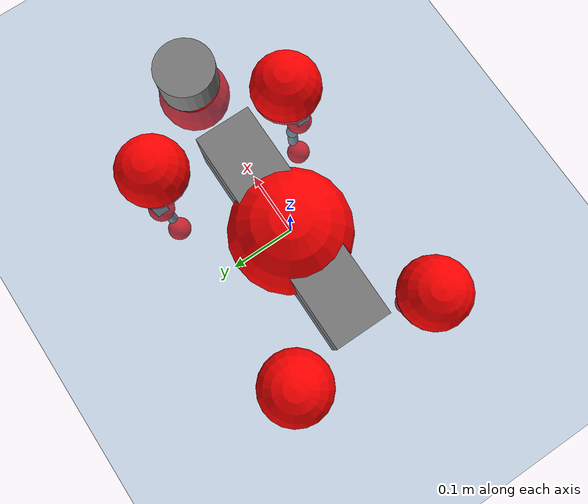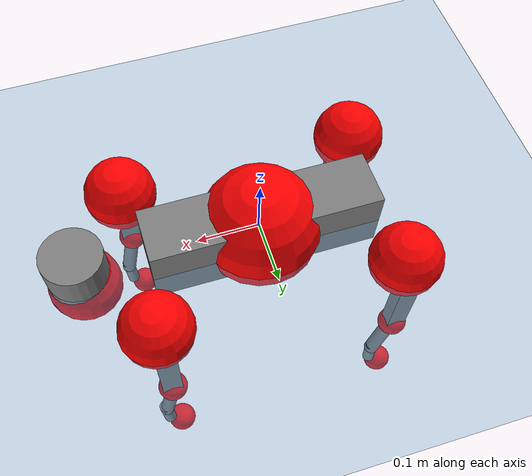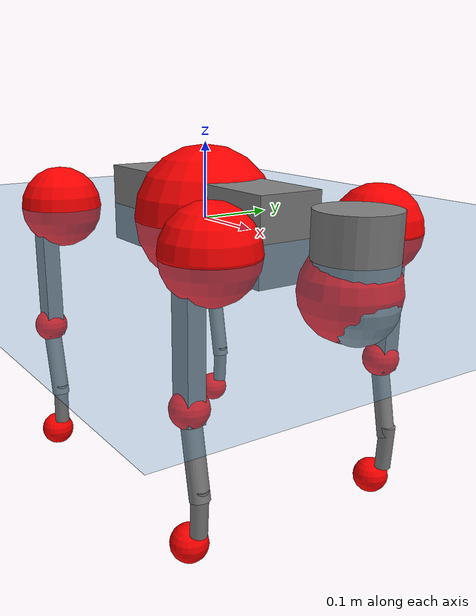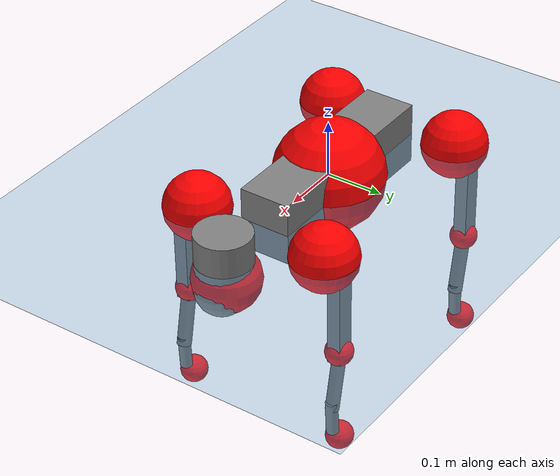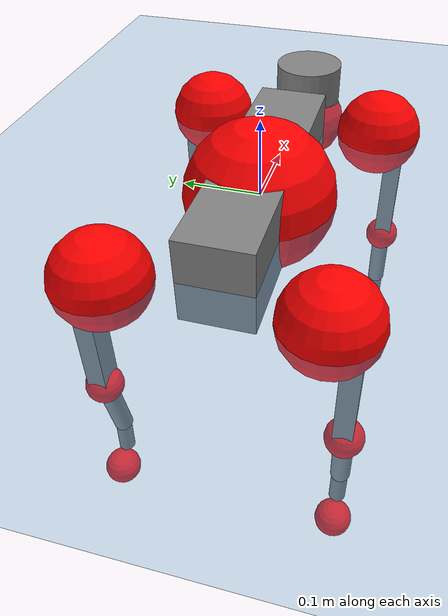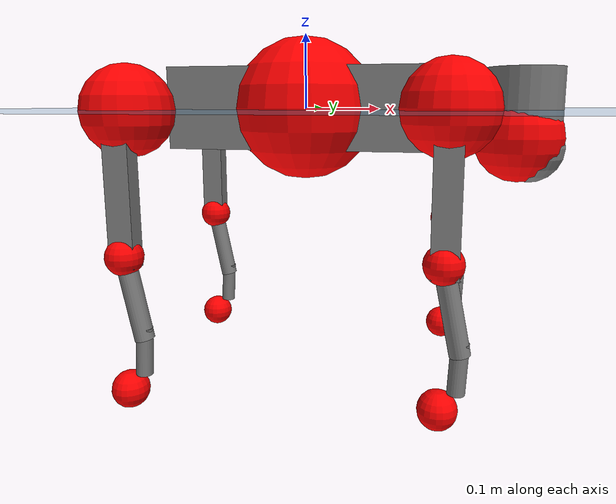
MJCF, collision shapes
<mujoco model="go2">
  <compiler angle="radian" assetdir="assets" balanceinertia="true" inertiafromgeom="false"/>

  <option timestep="0.005" density="1.2" viscosity="2e-05"/>

  <size nkey="1"/>

  <visual>
    <quality shadowsize="8192"/>
    <map shadowclip="0.5"/>
  </visual>

  <default>
    <default class="/">
      <geom contype="0" conaffinity="0" group="1" solref="-1000 -80"/>
      <site size="0.01 0.005 0.005" group="5"/>
      <general forcelimited="true" biastype="affine" gainprm="20" biasprm="0 -20 -0.5"/>
      <default class="go2">
        <joint armature="0.01" damping="0.01" frictionloss="0.2"/>
        <geom condim="1" margin="0.001"/>
        <default class="visual">
          <geom type="mesh" group="2"/>
        </default>
        <default class="collision">
          <geom group="3"/>
          <default class="foot">
            <geom size="0.022 0 0" condim="6" priority="1" friction="0.8 0.02 0.01" solimp="0.015 1 0.022"/>
          </default>
        </default>
        <default class="reward_collision_sphere">
          <geom group="5" rgba="1 0 0 1"/>
        </default>
      </default>
    </default>
  </default>

  <asset>
    <texture type="skybox" colorspace="auto" name="//unnamed_texture_0" builtin="gradient" rgb1="0.95 0.95 0.95" rgb2="0.95 0.95 0.95" width="100" height="600"/>
    <texture type="2d" colorspace="auto" name="texplane" builtin="checker" rgb1="0.345 0.575 0.748" rgb2="0.345 0.575 0.748" markrgb="1 1 1" width="512" height="512"/>
    <material name="MatPlane" class="/" texture="texplane" texuniform="true" texrepeat="2 2" specular="0.9"/>
    <material name="metal" class="/" rgba="0.9 0.95 0.95 1"/>
    <material name="black" class="/" rgba="0 0 0 1"/>
    <material name="white" class="/"/>
    <material name="gray" class="/" rgba="0.671705 0.692426 0.77427 1"/>
    <mesh name="base_0" class="/" file="base_0.obj"/>
    <mesh name="base_1" class="/" file="base_1.obj"/>
    <mesh name="base_2" class="/" file="base_2.obj"/>
    <mesh name="base_3" class="/" file="base_3.obj"/>
    <mesh name="base_4" class="/" file="base_4.obj"/>
    <mesh name="hip_0" class="/" file="hip_0.obj"/>
    <mesh name="hip_1" class="/" file="hip_1.obj"/>
    <mesh name="thigh_0" class="/" file="thigh_0.obj"/>
    <mesh name="thigh_1" class="/" file="thigh_1.obj"/>
    <mesh name="thigh_mirror_0" class="/" file="thigh_mirror_0.obj"/>
    <mesh name="thigh_mirror_1" class="/" file="thigh_mirror_1.obj"/>
    <mesh name="calf_0" class="/" file="calf_0.obj"/>
    <mesh name="calf_1" class="/" file="calf_1.obj"/>
    <mesh name="calf_mirror_0" class="/" file="calf_mirror_0.obj"/>
    <mesh name="calf_mirror_1" class="/" file="calf_mirror_1.obj"/>
    <mesh name="foot" class="/" file="foot.obj"/>
  </asset>

  <worldbody>
    <geom name="floor" class="/" size="100 100 0.125" type="plane" group="0" material="MatPlane"/>
    <light name="toplight_shadow" class="/" pos="0 0 5" dir="0.0990148 0.0990148 -0.990148" type="directional" ambient="0.04 0.04 0.04" diffuse="0.55 0.55 0.55" specular="0.12 0.12 0.12"/>
    <light name="toplight_fill" class="/" pos="0 0 5" dir="0.0990148 0.0990148 -0.990148" type="directional" castshadow="false" ambient="0.04 0.04 0.04" diffuse="0.3 0.3 0.3" specular="0.08 0.08 0.08"/>
    <body name="trunk" childclass="go2" pos="-0.00127742 0.000478966 0.000728228" quat="1 2.19984e-05 8.05529e-07 -7.80296e-05">
      <inertial pos="0.0195386 -6.08231e-05 -0.00443608" quat="-0.00397189 0.713606 -0.00160363 0.700534" mass="6.2078" diaginertia="0.113106 0.129564 0.00953127"/>
      <joint name="//unnamed_joint_0" type="free" armature="0" damping="0" frictionloss="0"/>
      <geom name="//unnamed_geom_1" class="visual" material="black" mesh="base_0"/>
      <geom name="//unnamed_geom_2" class="visual" material="black" mesh="base_1"/>
      <geom name="//unnamed_geom_3" class="visual" material="black" mesh="base_2"/>
      <geom name="//unnamed_geom_4" class="visual" material="white" mesh="base_3"/>
      <geom name="//unnamed_geom_5" class="visual" material="gray" mesh="base_4"/>
      <geom name="trunk_1" class="collision" size="0.181451 0.0450974 0.0549851" type="box"/>
      <geom name="trunk_2" class="collision" size="0.0482325 0.0434093" pos="0.288003 0 0.00826617" type="cylinder"/>
      <geom name="trunk_3" class="collision" size="0.0453386" pos="0.296088 0 -0.049597"/>
      <geom name="//unnamed_geom_9" class="reward_collision_sphere" size="0.096465"/>
      <geom name="//unnamed_geom_10" class="reward_collision_sphere" size="0.057879" pos="0.282951 0 -0.0371978"/>
      <site name="imu" pos="-0.0272131 -0.0029791 0.0350686" size="0.0096465"/>
      <camera name="track" pos="0 -2.11359 0" quat="0.707107 0.707107 0 0" mode="trackcom"/>
      <camera name="ego_camera" pos="0.315288 0 0.0371978" quat="-0.5 -0.5 0.5 0.5"/>
      <body name="FL_hip" pos="0.195795 0.0503862 0.000829959" quat="1 -2.80172e-05 -0.000538705 -0.000306564">
        <inertial pos="-0.00690827 0.00316829 0.000849458" quat="0.496068 0.499533 0.506265 0.498075" mass="0.609638" diaginertia="0.00093236 0.000781256 0.000184389"/>
        <joint name="FL_hip_joint" pos="0 0 0" axis="0.999998 -0.00121569 -0.00135276" stiffness="0.000638047" range="-1.04421 1.03559" armature="0.00958631" damping="0.00532208" frictionloss="0.184879"/>
        <geom name="//unnamed_geom_11" class="visual" material="metal" mesh="hip_0"/>
        <geom name="//unnamed_geom_12" class="visual" material="gray" mesh="hip_1"/>
        <geom name="//unnamed_geom_13" class="collision" size="0.0443739 0.019293" pos="0 0.0845436 0" quat="0.707107 0.707107 0 0" type="cylinder"/>
        <geom name="//unnamed_geom_14" class="reward_collision_sphere" size="0.057879" pos="0 0.0739756 0"/>
        <body name="FL_thigh" pos="-0.000775742 0.101462 0.000704661" quat="1 -7.6319e-05 -6.61073e-05 0.000171257">
          <inertial pos="-0.00266866 -0.0229693 -0.0261641" quat="0.829426 0.0851995 -0.0203383 0.551706" mass="1.03511" diaginertia="0.0062758 0.00772201 0.000343009"/>
          <joint name="FL_thigh_joint" pos="0 0 0" axis="-0.000104645 1 0.000302985" stiffness="0.0126266" range="-1.57198 3.49539" armature="0.00952918" damping="0" frictionloss="0.183513"/>
          <geom name="//unnamed_geom_15" class="visual" material="metal" mesh="thigh_0"/>
          <geom name="//unnamed_geom_16" class="visual" material="gray" mesh="thigh_1"/>
          <geom name="//unnamed_geom_17" class="collision" size="0.102735 0.011817 0.0163991" pos="0 0 -0.0880347" quat="0.707107 0 0.707107 0" type="box"/>
          <body name="FL_calf" pos="-0.000878165 -0.000249167 -0.17614" quat="1 -0.000144449 0.000202268 0.000295141">
            <inertial pos="0.00557718 -0.00151769 -0.116297" quat="0.710273 0.00467909 -0.00365059 0.703901" mass="0.21662" diaginertia="0.00157908 0.00190731 2.06928e-05"/>
            <joint name="FL_calf_joint" pos="0 0 0" axis="0.00426423 0.999967 -0.00698367" stiffness="0.00155308" range="-2.7323 -0.841398" armature="0.0101515" damping="0.00618349" frictionloss="0.188276"/>
            <geom name="//unnamed_geom_18" class="visual" material="gray" mesh="calf_0"/>
            <geom name="//unnamed_geom_19" class="visual" material="black" mesh="calf_1"/>
            <geom name="FL_calf0" class="collision" size="0.0115758 0.057879" pos="0.00808431 0 -0.049597" quat="0.994493 0 -0.104807 0" type="cylinder"/>
            <geom name="//unnamed_geom_21" class="collision" size="0.0106112 0.0313511" pos="0.0202108 0 -0.122339" quat="0.999688 0 0.0249974 0" type="cylinder"/>
            <geom name="//unnamed_geom_22" class="visual" pos="0 0 -0.176069" quat="1 0 0 0" material="black" mesh="foot"/>
            <geom name="FL_foot" class="foot" size="0.015153" pos="-0.00202108 0 -0.176069"/>
            <geom name="//unnamed_geom_24" class="reward_collision_sphere" size="0.0241163"/>
            <geom name="//unnamed_geom_25" class="reward_collision_sphere" size="0.0241163" pos="-0.00202108 0 -0.176069"/>
            <site name="FL_foot" class="foot" pos="-0.00202108 0 -0.176069" size="0.0096465"/>
          </body>
        </body>
      </body>
      <body name="FR_hip" pos="0.195608 -0.0477594 0.00118013" quat="1 4.43152e-05 -0.000154649 -0.000147759">
        <inertial pos="-0.00490587 -0.00187086 -0.000367097" quat="0.497074 0.506156 0.499916 0.496797" mass="0.6193" diaginertia="0.000919668 0.000777136 0.000185815"/>
        <joint name="FR_hip_joint" pos="0 0 0" axis="0.999993 0.00287004 0.0025116" stiffness="0.00238573" range="-1.06804 1.04905" armature="0.00893736" damping="0.0200026" frictionloss="0.206066"/>
        <geom name="//unnamed_geom_26" class="visual" pos="0 2.00521e-09 8.60077e-08" quat="4.63268e-05 1 0 0" material="metal" mesh="hip_0"/>
        <geom name="//unnamed_geom_27" class="visual" pos="0 3.25069e-09 -2.1273e-07" quat="4.63268e-05 1 0 0" material="gray" mesh="hip_1"/>
        <geom name="//unnamed_geom_28" class="collision" size="0.0443739 0.019293" pos="0 -0.0845436 0" quat="0.707107 0.707107 0 0" type="cylinder"/>
        <geom name="//unnamed_geom_29" class="reward_collision_sphere" size="0.057879" pos="0 -0.0739756 0"/>
        <body name="FR_thigh" pos="5.62238e-05 -0.101061 0.00165735" quat="1 -0.000355124 0.000236391 -1.44003e-05">
          <inertial pos="-0.00323672 0.0221544 -0.0267389" quat="0.551071 -0.0210864 0.0868836 0.829655" mass="1.02038" diaginertia="0.00633299 0.0078424 0.00034118"/>
          <joint name="FR_thigh_joint" pos="0 0 0" axis="0.00179726 -0.999992 -0.00370648" range="-3.48774 1.58518" armature="0.00964552" damping="0.0102661" frictionloss="0.184769"/>
          <geom name="//unnamed_geom_30" class="visual" material="metal" mesh="thigh_mirror_0"/>
          <geom name="//unnamed_geom_31" class="visual" material="gray" mesh="thigh_mirror_1"/>
          <geom name="//unnamed_geom_32" class="collision" size="0.102735 0.011817 0.0163991" pos="0 0 -0.0880347" quat="0.707107 0 0.707107 0" type="box"/>
          <body name="FR_calf" pos="-0.00118109 0.000875634 -0.175333" quat="1 -6.67137e-05 -1.17227e-05 7.97579e-05">
            <inertial pos="0.0054224 0.000916205 -0.116902" quat="0.703885 -0.00245781 0.000283282 0.710309" mass="0.217412" diaginertia="0.00158417 0.00194404 2.04932e-05"/>
            <joint name="FR_calf_joint" pos="0 0 0" axis="0.00644077 -0.999976 0.00238968" stiffness="0.0018135" range="0.833479 2.72212" armature="0.00957322" damping="0.00468638" frictionloss="0.194542"/>
            <geom name="//unnamed_geom_33" class="visual" material="gray" mesh="calf_mirror_0"/>
            <geom name="//unnamed_geom_34" class="visual" material="black" mesh="calf_mirror_1"/>
            <geom name="FR_calf0" class="collision" size="0.0125405 0.057879" pos="0.0101054 0 -0.049597" quat="0.995004 0 -0.0998334 0" type="cylinder"/>
            <geom name="//unnamed_geom_36" class="collision" size="0.0106112 0.0313511" pos="0.0202108 0 -0.122339" quat="0.999688 0 0.0249974 0" type="cylinder"/>
            <geom name="//unnamed_geom_37" class="visual" pos="0 0 -0.176069" quat="1 0 0 0" material="black" mesh="foot"/>
            <geom name="FR_foot" class="foot" size="0.021999" pos="-0.00202108 0 -0.176069"/>
            <geom name="//unnamed_geom_39" class="reward_collision_sphere" size="0.0241163"/>
            <geom name="//unnamed_geom_40" class="reward_collision_sphere" size="0.0241163" pos="-0.00202108 0 -0.176069"/>
            <site name="FR_foot" class="foot" pos="-0.00202108 0 -0.176069" size="0.0096465"/>
          </body>
        </body>
      </body>
      <body name="RL_hip" pos="-0.19455 0.0481236 -0.00130808" quat="0.999999 -0.000157945 0.000939303 0.000378741">
        <inertial pos="0.00644987 0.00188066 0.000524636" quat="0.505304 0.498343 0.496888 0.499424" mass="0.608768" diaginertia="0.000929115 0.000779801 0.000184364"/>
        <joint name="RL_hip_joint" pos="0 0 0" axis="-0.999836 -0.0105221 -0.0147439" range="-1.06013 1.05672" armature="0.00957141" damping="0.0168564" frictionloss="0.1863"/>
        <geom name="//unnamed_geom_41" class="visual" pos="-1.60224e-09 0 -3.14077e-07" quat="4.63268e-05 0 1 0" material="metal" mesh="hip_0"/>
        <geom name="//unnamed_geom_42" class="visual" pos="-2.59743e-09 0 -2.78541e-07" quat="4.63268e-05 0 1 0" material="gray" mesh="hip_1"/>
        <geom name="//unnamed_geom_43" class="collision" size="0.0443739 0.019293" pos="0 0.0845436 0" quat="0.707107 0.707107 0 0" type="cylinder"/>
        <geom name="//unnamed_geom_44" class="reward_collision_sphere" size="0.057879" pos="0 0.0739756 0"/>
        <body name="RL_thigh" pos="-0.00133743 0.0993204 -0.000700429" quat="1 -0.000109199 0.00054002 0.000244939">
          <inertial pos="-0.00375292 -0.0239551 -0.0275809" quat="0.8296 0.0817667 -0.0195745 0.551992" mass="1.0301" diaginertia="0.00626544 0.00770509 0.000337554"/>
          <joint name="RL_thigh_joint" pos="0 0 0" axis="0.00773573 0.999966 -0.00292709" range="-0.531546 4.54131" armature="0.0099131" damping="0" frictionloss="0.198089"/>
          <geom name="//unnamed_geom_45" class="visual" material="metal" mesh="thigh_0"/>
          <geom name="//unnamed_geom_46" class="visual" material="gray" mesh="thigh_1"/>
          <geom name="//unnamed_geom_47" class="collision" size="0.102735 0.011817 0.0163991" pos="0 0 -0.0880347" quat="0.707107 0 0.707107 0" type="box"/>
          <body name="RL_calf" pos="0.000331521 -0.0004986 -0.177791" quat="1 -0.000135475 0.000185303 8.54659e-06">
            <inertial pos="0.00641054 -0.00054139 -0.117623" quat="0.710475 0.000896189 -0.0045014 0.703707" mass="0.217461" diaginertia="0.00157215 0.00192663 2.06249e-05"/>
            <joint name="RL_calf_joint" pos="0 0 0" axis="0.00860344 0.999942 -0.00647544" range="-2.7208 -0.838347" armature="0.00992753" damping="0" frictionloss="0.195546"/>
            <geom name="//unnamed_geom_48" class="visual" material="gray" mesh="calf_0"/>
            <geom name="//unnamed_geom_49" class="visual" material="black" mesh="calf_1"/>
            <geom name="RL_calf0" class="collision" size="0.0125405 0.057879" pos="0.0101054 0 -0.049597" quat="0.995004 0 -0.0998334 0" type="cylinder"/>
            <geom name="//unnamed_geom_51" class="collision" size="0.0106112 0.0313511" pos="0.0202108 0 -0.122339" quat="0.999688 0 0.0249974 0" type="cylinder"/>
            <geom name="//unnamed_geom_52" class="visual" pos="0 0 -0.176069" quat="1 0 0 0" material="black" mesh="foot"/>
            <geom name="RL_foot" class="foot" size="0.0190872" pos="-0.00202108 0 -0.176069"/>
            <geom name="//unnamed_geom_54" class="reward_collision_sphere" size="0.0241163"/>
            <geom name="//unnamed_geom_55" class="reward_collision_sphere" size="0.0241163" pos="-0.00202108 0 -0.176069"/>
            <site name="RL_foot" class="foot" pos="-0.00202108 0 -0.176069" size="0.0096465"/>
          </body>
        </body>
      </body>
      <body name="RR_hip" pos="-0.195596 -0.0515873 -0.00223282" quat="1 0.00025319 0.000208146 2.19976e-05">
        <inertial pos="0.00549304 -0.00186737 -6.92513e-05" quat="0.502246 0.495691 0.495578 0.506401" mass="0.609" diaginertia="0.000922485 0.000779298 0.000187294"/>
        <joint name="RR_hip_joint" pos="0 0 0" axis="-0.999997 0.00210218 0.00102457" range="-1.03629 1.04564" armature="0.0102656" damping="0.0152372" frictionloss="0.18722"/>
        <geom name="//unnamed_geom_56" class="visual" pos="1.60385e-09 2.00521e-09 -4.00084e-07" quat="2.14617e-09 4.63268e-05 4.63268e-05 -1" material="metal" mesh="hip_0"/>
        <geom name="//unnamed_geom_57" class="visual" pos="2.59347e-09 3.25069e-09 -6.58115e-08" quat="2.14617e-09 4.63268e-05 4.63268e-05 -1" material="gray" mesh="hip_1"/>
        <geom name="//unnamed_geom_58" class="collision" size="0.0443739 0.019293" pos="0 -0.0845436 0" quat="0.707107 0.707107 0 0" type="cylinder"/>
        <geom name="//unnamed_geom_59" class="reward_collision_sphere" size="0.057879" pos="0 -0.0739756 0"/>
        <body name="RR_thigh" pos="0.000923027 -0.101275 -0.00203654" quat="1 3.96944e-05 6.05422e-05 8.3685e-06">
          <inertial pos="-0.00350968 0.0244517 -0.0274131" quat="0.55215 -0.0203604 0.0844669 0.829205" mass="1.05492" diaginertia="0.00638521 0.00774088 0.000338204"/>
          <joint name="RR_thigh_joint" pos="0 0 0" axis="-0.00259801 -0.99999 -0.00375509" range="-4.55641 0.508295" armature="0.00916852" damping="0.0171815" frictionloss="0.192731"/>
          <geom name="//unnamed_geom_60" class="visual" material="metal" mesh="thigh_mirror_0"/>
          <geom name="//unnamed_geom_61" class="visual" material="gray" mesh="thigh_mirror_1"/>
          <geom name="//unnamed_geom_62" class="collision" size="0.102735 0.011817 0.0163991" pos="0 0 -0.0880347" quat="0.707107 0 0.707107 0" type="box"/>
          <body name="RR_calf" pos="-0.00120667 -0.00147731 -0.177222" quat="1 -1.43673e-05 9.62679e-05 -0.000192667">
            <inertial pos="0.00785048 0.000433044 -0.118008" quat="0.705208 -0.00198663 0.000447397 0.708997" mass="0.217067" diaginertia="0.00152423 0.00190331 1.99882e-05"/>
            <joint name="RR_calf_joint" pos="0 0 0" axis="-0.002171 -0.999992 -0.00340641" stiffness="0.000542149" range="0.831601 2.76215" armature="0.0096751" damping="0.0114575" frictionloss="0.192812"/>
            <geom name="//unnamed_geom_63" class="visual" material="gray" mesh="calf_mirror_0"/>
            <geom name="//unnamed_geom_64" class="visual" material="black" mesh="calf_mirror_1"/>
            <geom name="RR_calf0" class="collision" size="0.0125405 0.057879" pos="0.0101054 0 -0.049597" quat="0.995004 0 -0.0998334 0" type="cylinder"/>
            <geom name="//unnamed_geom_66" class="collision" size="0.0106112 0.0313511" pos="0.0202108 0 -0.122339" quat="0.999688 0 0.0249974 0" type="cylinder"/>
            <geom name="//unnamed_geom_67" class="visual" pos="0 0 -0.176069" quat="1 0 0 0" material="black" mesh="foot"/>
            <geom name="RR_foot" class="foot" size="0.023099" pos="-0.00202108 0 -0.176069"/>
            <geom name="//unnamed_geom_69" class="reward_collision_sphere" size="0.0241163"/>
            <geom name="//unnamed_geom_70" class="reward_collision_sphere" size="0.0241163" pos="-0.00202108 0 -0.176069"/>
            <site name="RR_foot" class="foot" pos="-0.00202108 0 -0.176069" size="0.0096465"/>
          </body>
        </body>
      </body>
    </body>
  </worldbody>

  <contact>
    <pair class="/" geom1="floor" geom2="FL_foot" name="//unnamed_contact_0"/>
    <pair class="/" geom1="floor" geom2="FR_foot" name="//unnamed_contact_1"/>
    <pair class="/" geom1="floor" geom2="RL_foot" name="//unnamed_contact_2"/>
    <pair class="/" geom1="floor" geom2="RR_foot" name="//unnamed_contact_3"/>
  </contact>

  <actuator>
    <general name="FL_hip" class="/" joint="FL_hip_joint" forcerange="-22.8503 22.8503" gainprm="19.3255" biasprm="0 -19.3255 -0.48394"/>
    <general name="FL_thigh" class="/" joint="FL_thigh_joint" forcerange="-23.7429 23.7429" gainprm="19.3255" biasprm="0 -19.3255 -0.48394"/>
    <general name="FL_calf" class="/" joint="FL_calf_joint" forcerange="-43.4033 43.4033" gainprm="19.3255" biasprm="0 -19.3255 -0.48394"/>
    <general name="FR_hip" class="/" joint="FR_hip_joint" forcerange="-24.2111 24.2111" gainprm="19.3255" biasprm="0 -19.3255 -0.48394"/>
    <general name="FR_thigh" class="/" joint="FR_thigh_joint" forcerange="-22.904 22.904" gainprm="19.3255" biasprm="0 -19.3255 -0.48394"/>
    <general name="FR_calf" class="/" joint="FR_calf_joint" forcerange="-43.8743 43.8743" gainprm="19.3255" biasprm="0 -19.3255 -0.48394"/>
    <general name="RL_hip" class="/" joint="RL_hip_joint" forcerange="-22.5781 22.5781" gainprm="19.3255" biasprm="0 -19.3255 -0.48394"/>
    <general name="RL_thigh" class="/" joint="RL_thigh_joint" forcerange="-22.742 22.742" gainprm="19.3255" biasprm="0 -19.3255 -0.48394"/>
    <general name="RL_calf" class="/" joint="RL_calf_joint" forcerange="-44.5215 44.5215" gainprm="19.3255" biasprm="0 -19.3255 -0.48394"/>
    <general name="RR_hip" class="/" joint="RR_hip_joint" forcerange="-23.2909 23.2909" gainprm="19.3255" biasprm="0 -19.3255 -0.48394"/>
    <general name="RR_thigh" class="/" joint="RR_thigh_joint" forcerange="-23.0766 23.0766" gainprm="19.3255" biasprm="0 -19.3255 -0.48394"/>
    <general name="RR_calf" class="/" joint="RR_calf_joint" forcerange="-45.6767 45.6767" gainprm="19.3255" biasprm="0 -19.3255 -0.48394"/>
  </actuator>

  <sensor>
    <gyro site="imu" name="imu_angular_velocity"/>
    <velocimeter site="imu" name="imu_linear_velocity"/>
    <framelinvel objtype="site" objname="FL_foot" name="FL_foot_global_linear_velocity"/>
    <framelinvel objtype="site" objname="FR_foot" name="FR_foot_global_linear_velocity"/>
    <framelinvel objtype="site" objname="RL_foot" name="RL_foot_global_linear_velocity"/>
    <framelinvel objtype="site" objname="RR_foot" name="RR_foot_global_linear_velocity"/>
  </sensor>

  <keyframe>
    <key name="home" qpos="0 0 0.325 1 0 0 0 0.1 0.8 -1.5 -0.1 -0.8 1.5 -0.1 0.8 -1.5 0.1 -0.8 1.5"/>
  </keyframe>
</mujoco>
